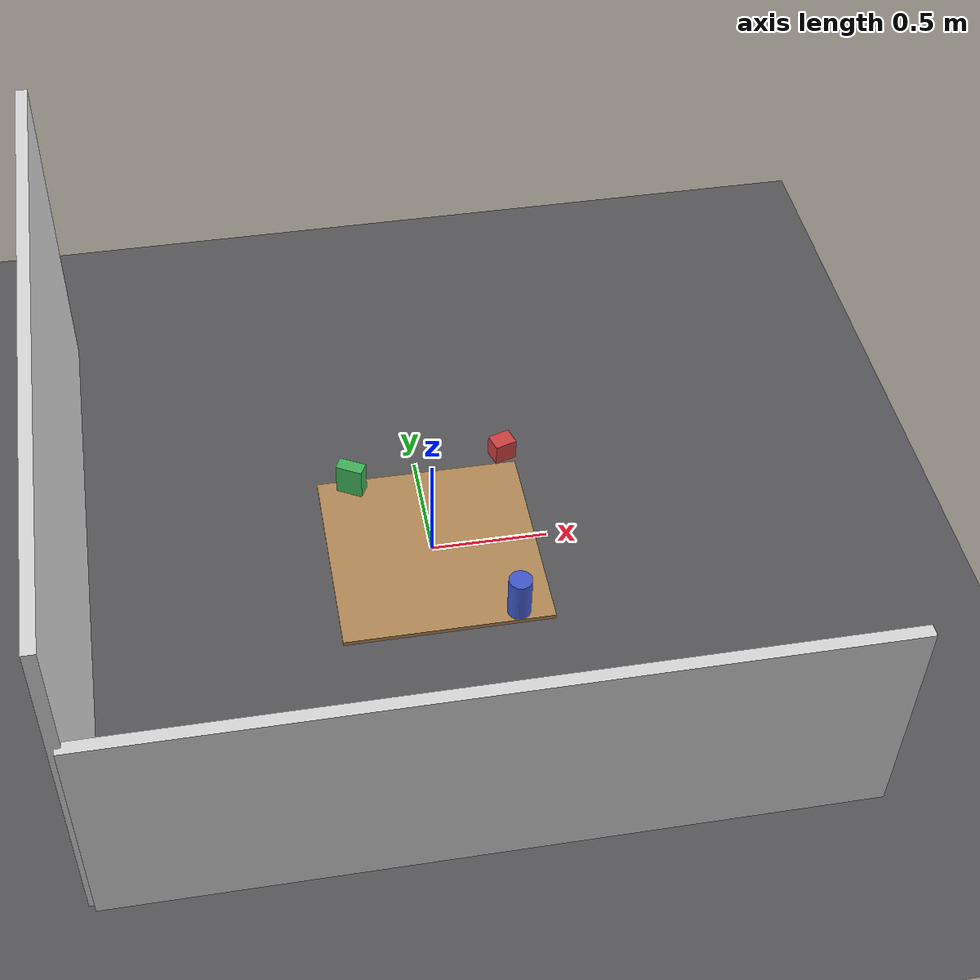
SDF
<?xml version="1.0" ?>
<sdf version="1.9">
  <world name="randomized">

    <scene>
      <ambient>0.56 0.56 0.56 1</ambient>
      <background>0.84 0.84 0.84 1</background>
      <shadows>true</shadows>
      <grid>false</grid>
    </scene>

    <!-- Physics -->
    <physics name="default_physics" type="ode">
      <max_step_size>0.004</max_step_size>
      <real_time_factor>0</real_time_factor>
    </physics>

    <!-- Sun (main directional light) -->
    <light type="directional" name="sun">
      <cast_shadows>true</cast_shadows>
      <pose>0 0 10 0 0 0</pose>
      <diffuse>1.0 1.0 1.0 1</diffuse>
      <specular>0.35 0.35 0.35 1</specular>
      <attenuation>
        <range>1000</range>
        <constant>0.9</constant>
        <linear>0.01</linear>
        <quadratic>0.001</quadratic>
      </attenuation>
      <direction>-0.5 0.3 -0.9</direction>
    </light>

    <!-- Secondary fill light (softer, from opposite side) -->
    <light type="directional" name="fill_light">
      <cast_shadows>false</cast_shadows>
      <pose>0 0 8 0 0 0</pose>
      <diffuse>0.6 0.6 0.6 1</diffuse>
      <specular>0.15 0.15 0.15 1</specular>
      <direction>0.5 -0.3 -0.7</direction>
    </light>

    <!-- Point light (neutral white, positioned near robot) -->
    <light type="point" name="warm_point">
      <cast_shadows>false</cast_shadows>
      <pose>1.0 0.5 1.5 0 0 0</pose>
      <diffuse>0.6 0.6 0.6 1</diffuse>
      <specular>0.1 0.1 0.1 1</specular>
      <attenuation>
        <range>5</range>
        <constant>0.5</constant>
        <linear>0.2</linear>
        <quadratic>0.05</quadratic>
      </attenuation>
    </light>

    <!-- Ground plane (dropped 1.5 cm below the table top to avoid z-fighting
         stripes on the tabletop in the overhead view) -->
    <model name="ground_plane">
      <static>true</static>
      <pose>0 0 -0.015 0 0 0</pose>
      <link name="link">
        <collision name="collision">
          <geometry>
            <plane>
              <normal>0 0 1</normal>
              <size>20 20</size>
            </plane>
          </geometry>
        </collision>
        <visual name="visual">
          <geometry>
            <plane>
              <normal>0 0 1</normal>
              <size>20 20</size>
            </plane>
          </geometry>
          <!-- Neutral grey office carpet (the real captures sit on grey carpet,
               not the previous greenish floor). Low specular = matte fabric. -->
          <material>
            <ambient>0.28 0.28 0.29 1</ambient>
            <diffuse>0.34 0.34 0.35 1</diffuse>
            <specular>0.03 0.03 0.03 1</specular>
          </material>
        </visual>
      </link>
    </model>

    <!-- Background objects for visual clutter / domain randomization -->

    <!-- Back wall (light, near-white office partition) -->
    <model name="back_wall">
      <static>true</static>
      <pose>-1.5 0 0.75 0 0 0</pose>
      <link name="link">
        <visual name="visual">
          <geometry><box><size>0.05 3.0 1.5</size></box></geometry>
          <material>
            <ambient>0.80 0.80 0.80 1</ambient>
            <diffuse>0.85 0.85 0.85 1</diffuse>
          </material>
        </visual>
      </link>
    </model>

    <!-- Side panel (light, near-white office partition) -->
    <model name="side_panel">
      <static>true</static>
      <pose>0 -1.5 0.5 0 0 0</pose>
      <link name="link">
        <visual name="visual">
          <geometry><box><size>3.0 0.05 1.0</size></box></geometry>
          <material>
            <ambient>0.80 0.80 0.80 1</ambient>
            <diffuse>0.85 0.85 0.85 1</diffuse>
          </material>
        </visual>
      </link>
    </model>

    <!-- Table / desktop under robot — large enough to fill the lower frame in
         all 4 (now wider-FOV) camera views, like a real office desk. -->
    <model name="table">
      <static>true</static>
      <pose>0 0 -0.02 0 0 0</pose>
      <link name="link">
        <visual name="visual">
          <geometry><box><size>0.9 0.9 0.04</size></box></geometry>
          <material>
            <ambient>0.50 0.38 0.24 1</ambient>
            <diffuse>0.70 0.54 0.34 1</diffuse>
            <specular>0.05 0.04 0.03 1</specular>
            <pbr>
              <metal>
                <albedo_map>/home/genji/ros_jazzy/src/mycobot_R6A/mycobot_description/materials/textures/wood_desk.png</albedo_map>
                <metalness>0.0</metalness>
                <roughness>0.85</roughness>
              </metal>
            </pbr>
          </material>
        </visual>
        <collision name="collision">
          <geometry><box><size>0.9 0.9 0.04</size></box></geometry>
        </collision>
      </link>
    </model>

    <!-- Random clutter boxes -->
    <model name="clutter_box_1">
      <static>true</static>
      <pose>0.4 0.5 0.05 0 0 0.3</pose>
      <link name="link">
        <visual name="visual">
          <geometry><box><size>0.1 0.08 0.1</size></box></geometry>
          <material>
            <ambient>0.7 0.2 0.2 1</ambient>
            <diffuse>0.8 0.25 0.25 1</diffuse>
          </material>
        </visual>
      </link>
    </model>

    <model name="clutter_box_2">
      <static>true</static>
      <pose>-0.3 0.4 0.075 0 0 -0.5</pose>
      <link name="link">
        <visual name="visual">
          <geometry><box><size>0.12 0.06 0.15</size></box></geometry>
          <material>
            <ambient>0.2 0.6 0.3 1</ambient>
            <diffuse>0.25 0.7 0.35 1</diffuse>
          </material>
        </visual>
      </link>
    </model>

    <model name="clutter_cylinder">
      <static>true</static>
      <pose>0.3 -0.4 0.1 0 0 0</pose>
      <link name="link">
        <visual name="visual">
          <geometry><cylinder><radius>0.05</radius><length>0.2</length></cylinder></geometry>
          <material>
            <ambient>0.2 0.3 0.7 1</ambient>
            <diffuse>0.25 0.35 0.8 1</diffuse>
          </material>
        </visual>
      </link>
    </model>

  </world>
</sdf>
